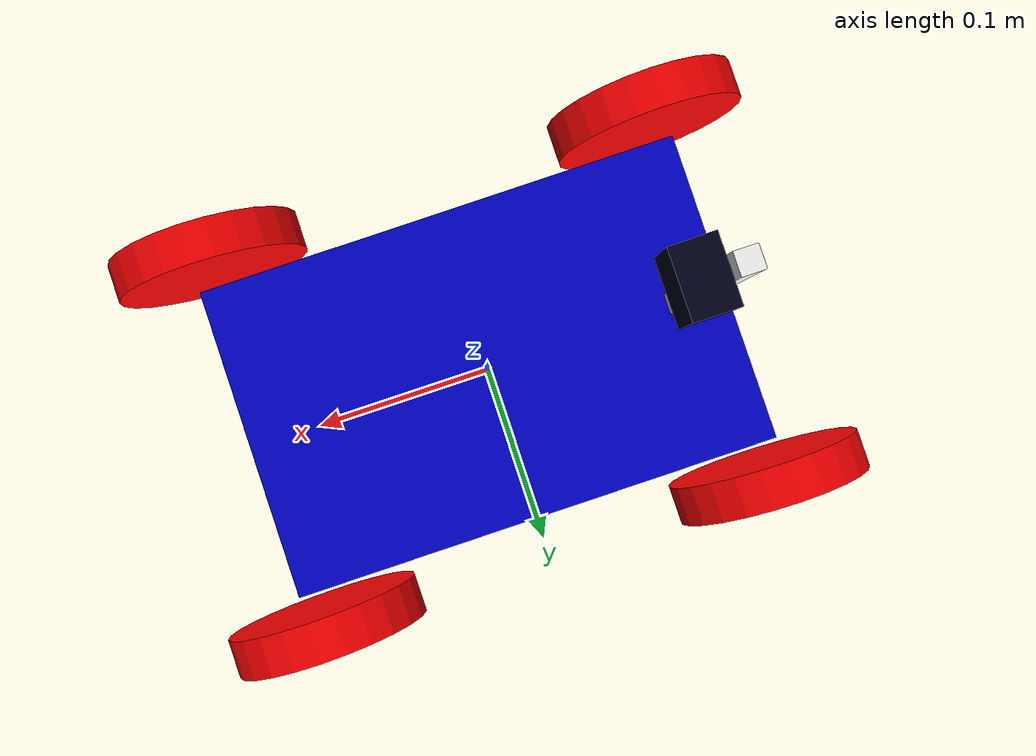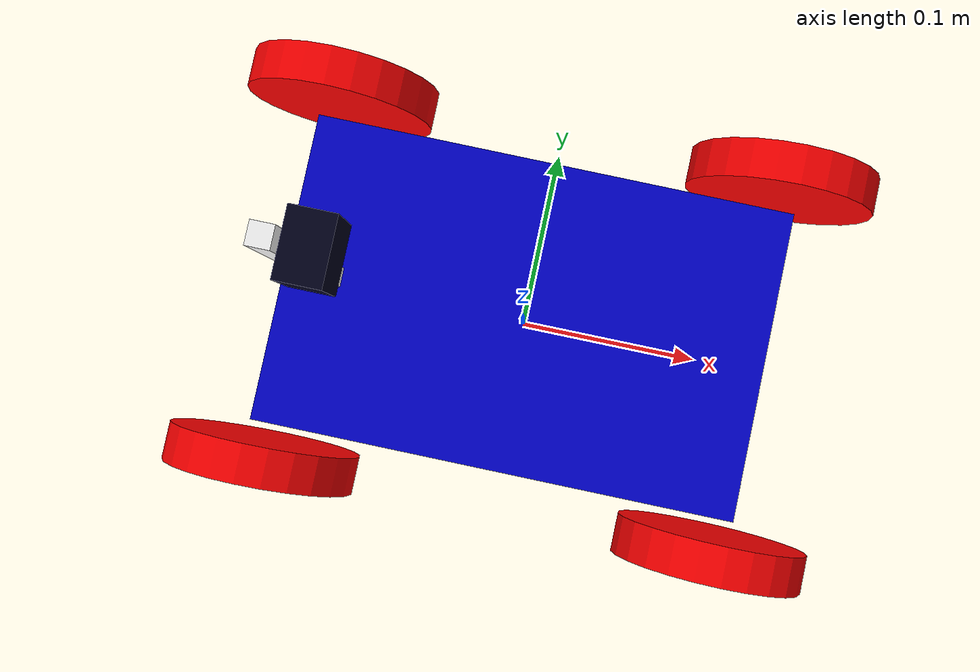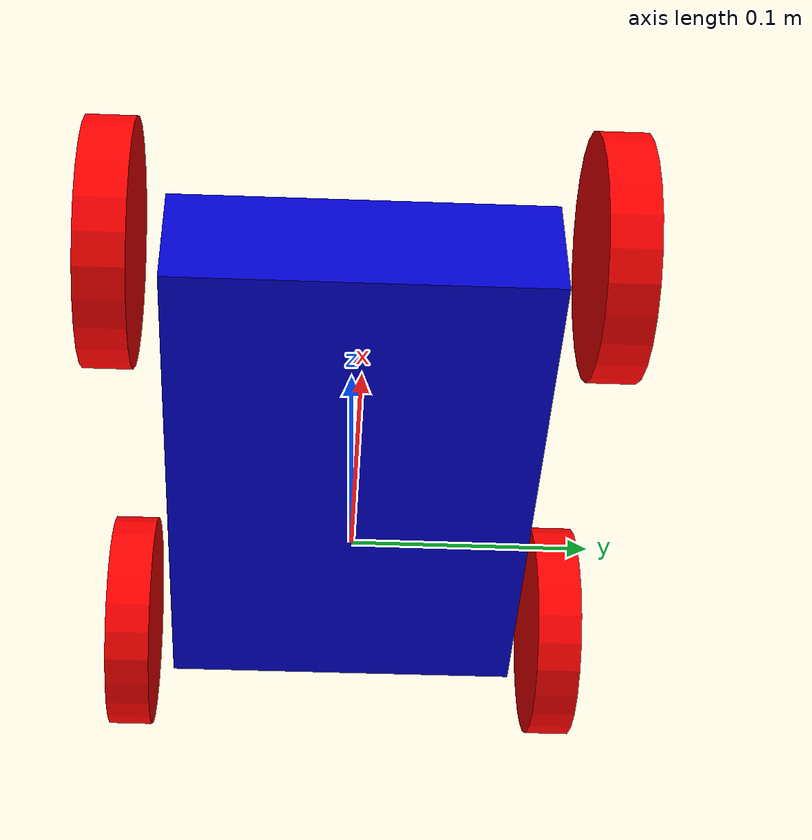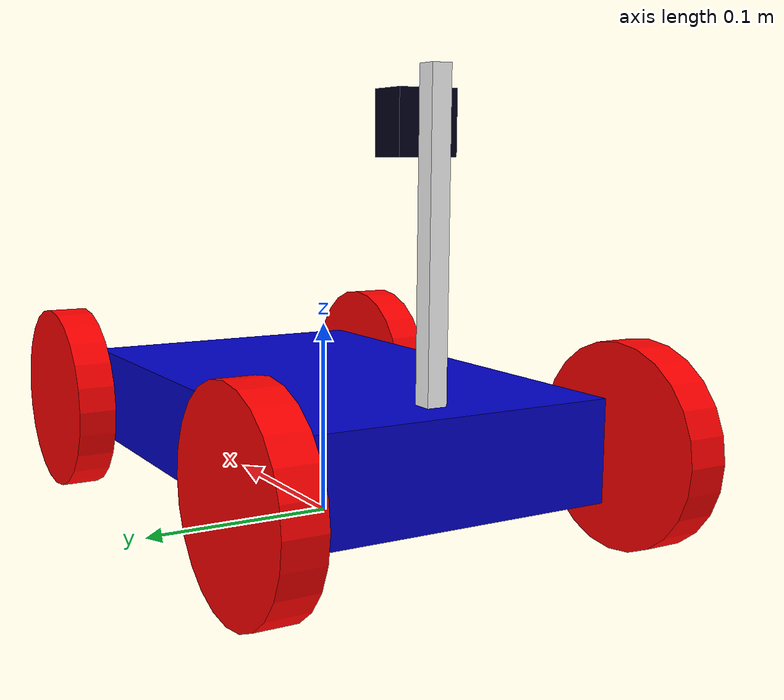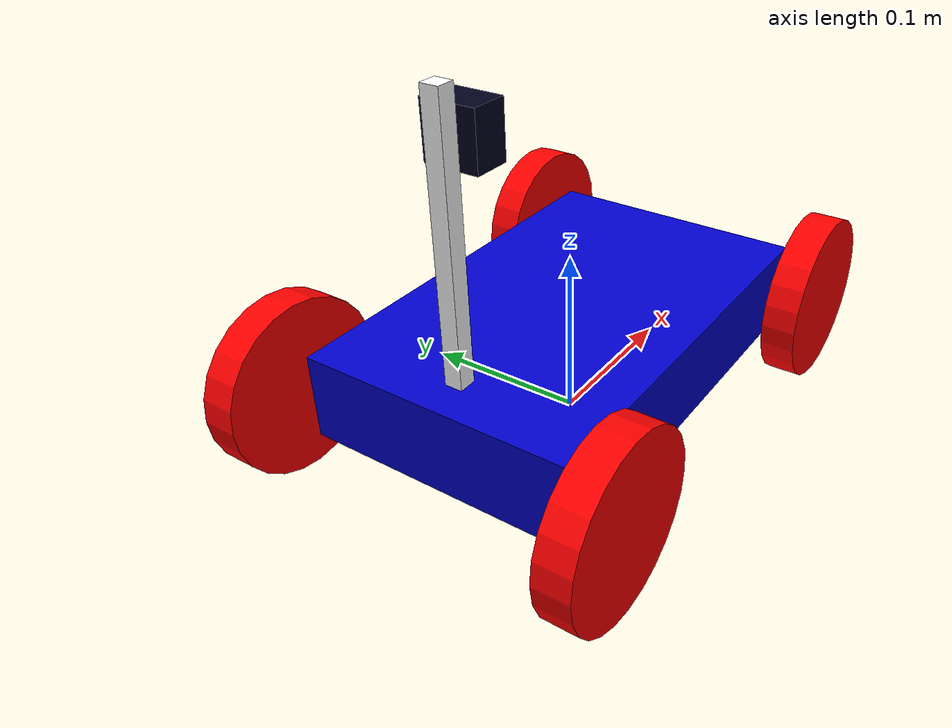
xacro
<?xml version="1.0"?>

<robot name="smartcar" xmlns:xacro="http://www.ros.org/wiki/xacro">

    <xacro:property name="PI" value="3.1415926535897931"/>

    <xacro:property name="chassisHeight" value="0.05"/>

    <xacro:property name="chassisLength" value="0.25"/>

    <xacro:property name="chassisWidth" value="0.16"/>

    <xacro:property name="chassisMass" value="50"/>

    <xacro:property name="wheelWidth" value="0.02"/>

    <xacro:property name="wheelRadius" value="0.05"/>

    <xacro:property name="wheelMass" value="5"/>

    <xacro:property name="cameraSize" value="0.03"/>

    <xacro:property name="cameraMass" value="0.1"/>

    <xacro:include filename="$(find RMbot_description)/urdf/macros.xacro" />

<!-- car model -->

<link name="footprint" />

    <joint name="base_joint" type="fixed">

      <parent link="footprint"/>

      <child link="base_link"/>

    </joint>

<link name="base_link">

    <visual>

        <geometry>
            <box size="${chassisLength} ${chassisWidth} ${chassisHeight}"/>
        </geometry>

        <origin rpy="0 0 0" xyz="0 0 ${wheelRadius}"/>

        <material name="gree">
            <color rgba="0 0 .8 1"/>
        </material>

    </visual>

    <collision>

        <origin xyz="0 0 ${wheelRadius}" rpy="0 0 0"/>

        <geometry>
            <box size="${chassisLength} ${chassisWidth} ${chassisHeight}"/>
        </geometry>

    </collision>

    <inertial>

        <origin xyz="0 0 ${wheelRadius}" rpy="0 0 0"/>

        <mass value="${chassisMass}"/>

        <xacro:box_inertia m="${chassisMass}" x="${chassisLength}" y="${chassisWidth}" z="${chassisHeight}"/>

    </inertial>

</link>

<!-- Add wheels to the chassis -->

 <link name="left_front_wheel">

    <visual>
      <geometry>
        <cylinder length="${wheelWidth}" radius="${wheelRadius}"/>
      </geometry>
      <material name="red">
        <color rgba="1 0 0 1"/>
      </material>
    </visual>

    <collision>
      <geometry>
        <cylinder length="${wheelWidth}" radius="${wheelRadius}"/>
      </geometry>
    </collision>

  </link>

  <joint name="left_front_wheel_joint" type="continuous">
    <axis xyz="0 0 1"/>
    <parent link="base_link"/>
    <child link="left_front_wheel"/>
    <origin rpy="${PI/2} 0 0" xyz="0.12 0.1 ${wheelRadius}"/>
    <limit effort="100" velocity="100"/>
    <joint_properties damping="0.0" friction="0.0"/>
  </joint>

 <link name="right_front_wheel">
    <visual>
      <geometry>
        <cylinder length=".02" radius="0.05"/>
      </geometry>
      <material name="red">
        <color rgba="1 0 0 1"/>
      </material>
    </visual>

    <collision>
      <geometry>
        <cylinder length="${wheelWidth}" radius="${wheelRadius}"/>
      </geometry>
    </collision>

  </link>

  <joint name="right_front_wheel_joint" type="continuous">
    <axis xyz="0 0 1"/>
    <parent link="base_link"/>
    <child link="right_front_wheel"/>
    <origin rpy="${PI/2} 0 0" xyz="0.12 -0.1 ${wheelRadius}"/>
    <limit effort="100" velocity="100"/>
    <joint_properties damping="0.0" friction="0.0"/>
  </joint>

  <link name="right_back_wheel">

    <visual>
      <geometry>
        <cylinder length=".02" radius="0.05"/>
      </geometry>
      <material name="red">
        <color rgba="1 0 0 1"/>
      </material>
    </visual>

    <collision>
      <geometry>
        <cylinder length="${wheelWidth}" radius="${wheelRadius}"/>
      </geometry>
    </collision>
  </link>

  <joint name="right_back_wheel_joint" type="continuous">
    <axis xyz="0 0 1"/>
    <parent link="base_link"/>
    <child link="right_back_wheel"/>
    <origin rpy="${PI/2} 0 0" xyz="-0.12 -0.1 ${wheelRadius}"/>
    <limit effort="100" velocity="100"/>
    <joint_properties damping="0.0" friction="0.0"/>
 </joint>

  <link name="left_back_wheel">
    <visual>
      <geometry>
        <cylinder length="${wheelWidth}" radius="${wheelRadius}"/>
      </geometry>
      <material name="red">
        <color rgba="1 0 0 1"/>
      </material>
    </visual>

    <collision>
      <geometry>
        <cylinder length="${wheelWidth}" radius="${wheelRadius}"/>
      </geometry>
    </collision>
  </link>

  <joint name="left_back_wheel_joint" type="continuous">
    <axis xyz="0 0 1"/>
    <parent link="base_link"/>
    <child link="left_back_wheel"/>
    <origin rpy="${PI/2} 0 0" xyz="-0.12 0.1 ${wheelRadius}"/>
    <limit effort="100" velocity="100"/>
    <joint_properties damping="0.0" friction="0.0"/>
  </joint>

<!-- Add camera to chassis -->

  <joint name="camera_holder_fixed" type="fixed">
    <parent link="base_link"/>
    <child link="camera_holder"/>
    <origin xyz="-0.1 0.0 0.15"/>
    <axis xyz="0 0 1" rpy="0 0 0" />
  </joint>

  <link name="camera_holder">
    <visual>
      <geometry>
        <box size=".01 .01 .15"/>
      </geometry>

      <material name="white">
          <color rgba="1 1 1 1"/>
      </material>
    </visual>

    <collision>
        <geometry>
            <box size=".01 .01 .15"/>
        </geometry>
    </collision>
  </link>

  <joint name="camera_fixed" type="fixed">
    <parent link="camera_holder"/>
    <child link="camera"/>
    <origin xyz="0.015 0.0 0.05"/>
    <axis rpy="0 0 0" xyz="1 0 0" />
  </joint>

  <link name="camera">
    <visual>
      <geometry>
        <box size=".02 .03 .03"/>
      </geometry>

      <origin rpy="0 0 0" xyz="0 0 0"/>

      <material name="black">
          <color rgba="0 0 0.1 1"/>
      </material>
    </visual>

    <collision>
        <geometry>
            <box size=".02 .03 .03"/>
        </geometry>
    </collision>
  </link>

</robot>

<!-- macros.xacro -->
<robot xmlns:xacro="http://www.ros.org/wiki/xacro">

     <xacro:macro name="cylinder_inertia" params="m r h">

        <inertia  ixx="${m*(3*r*r+h*h)/12}" ixy = "0" ixz = "0"

                  iyy="${m*(3*r*r+h*h)/12}" iyz = "0"

                  izz="${m*r*r/2}" />

      </xacro:macro>

      <xacro:macro name="box_inertia" params="m x y z">

        <inertia  ixx="${m*(y*y+z*z)/12}" ixy = "0" ixz = "0"

                  iyy="${m*(x*x+z*z)/12}" iyz = "0"

                  izz="${m*(x*x+z*z)/12}" />

      </xacro:macro>

     <xacro:macro name="sphere_inertia" params="m r">

        <inertia  ixx="${2*m*r*r/5}" ixy = "0" ixz = "0"

                  iyy="${2*m*r*r/5}" iyz = "0"

                  izz="${2*m*r*r/5}" />

      </xacro:macro>

<xacro:macro name="wheel" params="lr tY">

<link name="${lr}_wheel">

  <collision>

    <origin xyz="0 0 0" rpy="0 ${PI/2} ${PI/2}" />

    <geometry>

      <cylinder length="${wheelWidth}" radius="${wheelRadius}"/>

    </geometry>

  </collision>

  <visual>

    <origin xyz="0 0 0" rpy="0 ${PI/2} ${PI/2}" />

    <geometry>

      <cylinder length="${wheelWidth}" radius="${wheelRadius}"/>

    </geometry>

    <material name="black"/>

  </visual>

  <inertial>

    <origin xyz="0 0 0" rpy="0 ${PI/2} ${PI/2}" />

    <mass value="${wheelMass}"/>

    <xacro:cylinder_inertia m="${wheelMass}" r="${wheelRadius}" h="${wheelWidth}"/>

  </inertial>

</link>

<gazebo reference="${lr}_wheel">

  <mu1 value="1.0"/>

  <mu2 value="1.0"/>

  <kp  value="10000000.0" />

  <kd  value="1.0" />

  <fdir1 value="1 0 0"/>

  <material>Gazebo/Black</material>

</gazebo>

<joint name="${lr}_wheel_hinge" type="continuous">

  <parent link="chassis"/>

  <child link="${lr}_wheel"/>

<origin xyz="${-wheelPos+chassisLength/2} ${tY*wheelWidth/2+tY*chassisWidth/2} ${wheelRadius}" rpy="0 0 0" />

  <axis xyz="0 1 0" rpy="0 0 0" />

  <limit effort="100" velocity="100"/>

  <joint_properties damping="0.0" friction="0.0"/>

</joint>

<transmission name="${lr}_trans">

		  <type>transmission_interface/SimpleTransmission</type>

		  <joint name="${lr}_wheel_hinge">

			  <hardwareInterface>hardware_interface/EffortJointInterface</hardwareInterface>

		  </joint>

		  <actuator name="${lr}Motor">

			<hardwareInterface>hardware_interface/EffortJointInterface</hardwareInterface>

			<mechanicalReduction>10</mechanicalReduction>

		  </actuator>

		</transmission>

</xacro:macro>

</robot>
